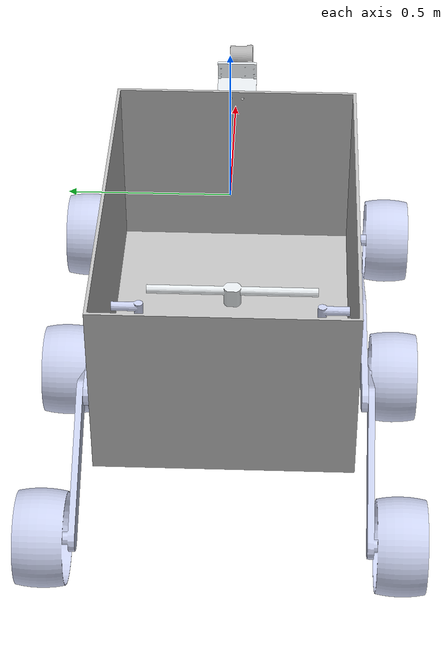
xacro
<?xml version="1.0" encoding="utf-8"?>
<robot xmlns:xacro="http://www.ros.org/wiki/xacro"
  name="MarsRover">
  <xacro:include filename="$(find mars_rover)/urdf/MarsRover.gazebo" />
  <xacro:property name="PI" value="3.141592654" />
  <xacro:property name="LidarAngle" value="${PI/180*0}" />
  <xacro:property name="LidarHeight" value="-0.0" />
  <xacro:property name="LidarName" value="PandarQT" />
  <xacro:property name="LidarDataTopicName" value="PandarQT_Data" />
  <xacro:property name="LidarHz" value="10" />
  <xacro:property name="LidarLasers" value="64" />
  <xacro:property name="LidarSamples" value="600" />
  <xacro:property name="LidarBeamVisual" value="false" />

  <link
    name="body">
    <inertial>
      <origin
        xyz="-0.0001479 -1.1102E-16 -0.38223"
        rpy="0 0 0" />
      <mass
        value="32.929" />
      <inertia
        ixx="4.4749"
        ixy="-1.3173E-14"
        ixz="-0.00050348"
        iyy="7.3974"
        iyz="-8.0126E-16"
        izz="9.2942" />
    </inertial>
    <visual>
      <origin
        xyz="0 0 0"
        rpy="0 0 0" />
      <geometry>
        <mesh
          filename="package://mars_rover/meshes/body.dae" />
      </geometry>
      <material
        name="">
        <color
          rgba="0.75294 0.75294 0.75294 1" />
      </material>
    </visual>
    <collision>
      <origin
        xyz="0 0 0"
        rpy="0 0 0" />
      <geometry>
        <mesh
          filename="package://mars_rover/meshes/body.dae" />
      </geometry>
    </collision>
  </link>
  <link
    name="DiffBar">
    <inertial>
      <origin
        xyz="7.2337E-10 -3.373E-08 -0.022313"
        rpy="0 0 0" />
      <mass
        value="1.4917" />
      <inertia
        ixx="0.030386"
        ixy="-6.0053E-07"
        ixz="-4.2736E-11"
        iyy="0.00058396"
        iyz="-1.8798E-08"
        izz="0.030095" />
    </inertial>
    <visual>
      <origin
        xyz="0 0 0"
        rpy="0 0 0" />
      <geometry>
        <mesh
          filename="package://mars_rover/meshes/DiffBar.dae" />
      </geometry>
      <material
        name="">
        <color
          rgba="0.89804 0.91765 0.92941 1" />
      </material>
    </visual>
    <collision>
      <origin
        xyz="0 0 0"
        rpy="0 0 0" />
      <geometry>
        <mesh
          filename="package://mars_rover/meshes/DiffBar.dae" />
      </geometry>
    </collision>
  </link>
  <joint
    name="joint_body_DiffBar"
    type="continuous">
    <origin
      xyz="0.20043 0 -0.525"
      rpy="0 0 0" />
    <parent
      link="body" />
    <child
      link="DiffBar" />
    <axis
      xyz="0 0 1" />
  </joint>
  <link
    name="LeftMainRocket">
    <inertial>
      <origin
        xyz="0.19478 0.032219 -0.10164"
        rpy="0 0 0" />
      <mass
        value="2.3166" />
      <inertia
        ixx="0.025318"
        ixy="-0.0056299"
        ixz="0.076395"
        iyy="0.32297"
        iyz="0.0021277"
        izz="0.30151" />
    </inertial>
    <visual>
      <origin
        xyz="0 0 0"
        rpy="0 0 0" />
      <geometry>
        <mesh
          filename="package://mars_rover/meshes/LeftMainRocket.dae" />
      </geometry>
      <material
        name="">
        <color
          rgba="0.79216 0.81961 0.93333 1" />
      </material>
    </visual>
    <collision>
      <origin
        xyz="0 0 0"
        rpy="0 0 0" />
      <geometry>
        <mesh
          filename="package://mars_rover/meshes/LeftMainRocket.dae" />
      </geometry>
    </collision>
  </link>
  <joint
    name="joint_body_LeftMainRocket"
    type="continuous">
    <origin
      xyz="0 0.395 -0.455"
      rpy="0 0 0" />
    <parent
      link="body" />
    <child
      link="LeftMainRocket" />
    <axis
      xyz="0 -1 0" />
  </joint>
  <link
    name="LeftViceRocket">
    <inertial>
      <origin
        xyz="0.00032494 0.0045778 -0.14283"
        rpy="0 0 0" />
      <mass
        value="1.7019" />
      <inertia
        ixx="0.011641"
        ixy="-1.7935E-06"
        ixz="-0.00023484"
        iyy="0.12548"
        iyz="0.00078835"
        izz="0.11487" />
    </inertial>
    <visual>
      <origin
        xyz="0 0 0"
        rpy="0 0 0" />
      <geometry>
        <mesh
          filename="package://mars_rover/meshes/LeftViceRocket.dae" />
      </geometry>
      <material
        name="">
        <color
          rgba="0.79216 0.81961 0.93333 1" />
      </material>
    </visual>
    <collision>
      <origin
        xyz="0 0 0"
        rpy="0 0 0" />
      <geometry>
        <mesh
          filename="package://mars_rover/meshes/LeftViceRocket.dae" />
      </geometry>
    </collision>
  </link>
  <joint
    name="joint_LeftMainRocket_LeftViceRocket"
    type="continuous">
    <origin
      xyz="-0.40088 0.055 -0.023072"
      rpy="0 0 0" />
    <parent
      link="LeftMainRocket" />
    <child
      link="LeftViceRocket" />
    <axis
      xyz="0 -1 0" />
  </joint>
  <link
    name="LeftMiddleWheel">
    <inertial>
      <origin
        xyz="0 -1.6653E-16 -2.7756E-17"
        rpy="0 0 0" />
      <mass
        value="2.468" />
      <inertia
        ixx="0.021876"
        ixy="8.5663E-19"
        ixz="-1.1926E-17"
        iyy="0.040526"
        iyz="-4.7148E-18"
        izz="0.021876" />
    </inertial>
    <visual>
      <origin
        xyz="0 0 0"
        rpy="0 0 0" />
      <geometry>
        <mesh
          filename="package://mars_rover/meshes/LeftMiddleWheel.dae" />
      </geometry>
      <material
        name="">
        <color
          rgba="0.79216 0.81961 0.93333 1" />
      </material>
    </visual>
    <collision>
      <origin
        xyz="0 0 0"
        rpy="0 0 0" />
      <geometry>
        <mesh
          filename="package://mars_rover/meshes/LeftMiddleWheel.dae" />
      </geometry>
    </collision>
  </link>
  <joint
    name="joint_LeftViceRocket_LeftMiddleWheel"
    type="continuous">
    <origin
      xyz="0.38804 0.09 -0.24313"
      rpy="0 0 0" />
    <parent
      link="LeftViceRocket" />
    <child
      link="LeftMiddleWheel" />
    <axis
      xyz="0 1 0" />
  </joint>
  <link
    name="LeftRearWheel">
    <inertial>
      <origin
        xyz="-5.5511E-17 -5.5511E-17 0"
        rpy="0 0 0" />
      <mass
        value="2.468" />
      <inertia
        ixx="0.021876"
        ixy="2.3544E-18"
        ixz="-1.088E-17"
        iyy="0.040526"
        iyz="-3.3563E-18"
        izz="0.021876" />
    </inertial>
    <visual>
      <origin
        xyz="0 0 0"
        rpy="0 0 0" />
      <geometry>
        <mesh
          filename="package://mars_rover/meshes/LeftRearWheel.dae" />
      </geometry>
      <material
        name="">
        <color
          rgba="0.79216 0.81961 0.93333 1" />
      </material>
    </visual>
    <collision>
      <origin
        xyz="0 0 0"
        rpy="0 0 0" />
      <geometry>
        <mesh
          filename="package://mars_rover/meshes/LeftRearWheel.dae" />
      </geometry>
    </collision>
  </link>
  <joint
    name="joint_LeftViceRocket_LeftRearWheel"
    type="continuous">
    <origin
      xyz="-0.38693 0.09 -0.2449"
      rpy="0 0 0" />
    <parent
      link="LeftViceRocket" />
    <child
      link="LeftRearWheel" />
    <axis
      xyz="0 1 0" />
  </joint>
  <link
    name="LeftFrontWheel">
    <inertial>
      <origin
        xyz="0 0 8.3267E-17"
        rpy="0 0 0" />
      <mass
        value="2.468" />
      <inertia
        ixx="0.021876"
        ixy="-1.137E-18"
        ixz="1.0907E-17"
        iyy="0.040526"
        iyz="-4.2082E-18"
        izz="0.021876" />
    </inertial>
    <visual>
      <origin
        xyz="0 0 0"
        rpy="0 0 0" />
      <geometry>
        <mesh
          filename="package://mars_rover/meshes/LeftFrontWheel.dae" />
      </geometry>
      <material
        name="">
        <color
          rgba="0.79216 0.81961 0.93333 1" />
      </material>
    </visual>
    <collision>
      <origin
        xyz="0 0 0"
        rpy="0 0 0" />
      <geometry>
        <mesh
          filename="package://mars_rover/meshes/LeftFrontWheel.dae" />
      </geometry>
    </collision>
  </link>
  <joint
    name="joint_LeftMainRocket_LeftFrontWheel"
    type="continuous">
    <origin
      xyz="0.75893 0.145 -0.27932"
      rpy="0 0 0" />
    <parent
      link="LeftMainRocket" />
    <child
      link="LeftFrontWheel" />
    <axis
      xyz="0 1 0" />
  </joint>
  <link
    name="RightMainRocket">
    <inertial>
      <origin
        xyz="0.19476 -0.032219 -0.10167"
        rpy="0 0 0" />
      <mass
        value="2.3166" />
      <inertia
        ixx="0.02534"
        ixy="0.0056295"
        ixz="0.076435"
        iyy="0.32297"
        iyz="-0.0021285"
        izz="0.30149" />
    </inertial>
    <visual>
      <origin
        xyz="0 0 0"
        rpy="0 0 0" />
      <geometry>
        <mesh
          filename="package://mars_rover/meshes/RightMainRocket.dae" />
      </geometry>
      <material
        name="">
        <color
          rgba="0.79216 0.81961 0.93333 1" />
      </material>
    </visual>
    <collision>
      <origin
        xyz="0 0 0"
        rpy="0 0 0" />
      <geometry>
        <mesh
          filename="package://mars_rover/meshes/RightMainRocket.dae" />
      </geometry>
    </collision>
  </link>
  <joint
    name="joint_body_RightMainRocket"
    type="continuous">
    <origin
      xyz="0 -0.395 -0.455"
      rpy="0 0 0" />
    <parent
      link="body" />
    <child
      link="RightMainRocket" />
    <axis
      xyz="0 1 0" />
  </joint>
  <link
    name="RightViceRocket">
    <inertial>
      <origin
        xyz="-3.7473E-05 -0.0045778 -0.14283"
        rpy="0 0 0" />
      <mass
        value="1.7019" />
      <inertia
        ixx="0.01164"
        ixy="-2.0683E-07"
        ixz="2.7083E-05"
        iyy="0.12548"
        iyz="-0.00078835"
        izz="0.11487" />
    </inertial>
    <visual>
      <origin
        xyz="0 0 0"
        rpy="0 0 0" />
      <geometry>
        <mesh
          filename="package://mars_rover/meshes/RightViceRocket.dae" />
      </geometry>
      <material
        name="">
        <color
          rgba="0.79216 0.81961 0.93333 1" />
      </material>
    </visual>
    <collision>
      <origin
        xyz="0 0 0"
        rpy="0 0 0" />
      <geometry>
        <mesh
          filename="package://mars_rover/meshes/RightViceRocket.dae" />
      </geometry>
    </collision>
  </link>
  <joint
    name="joint_RightMainRocket_RightViceRocket"
    type="continuous">
    <origin
      xyz="-0.40088 -0.055 -0.023015"
      rpy="0 0 0" />
    <parent
      link="RightMainRocket" />
    <child
      link="RightViceRocket" />
    <axis
      xyz="0 -1 0" />
  </joint>
  <link
    name="RightMiddleWheel">
    <inertial>
      <origin
        xyz="5.5511E-17 -4.4409E-16 2.7756E-17"
        rpy="0 0 0" />
      <mass
        value="2.468" />
      <inertia
        ixx="0.021876"
        ixy="5.6669E-19"
        ixz="-1.8696E-18"
        iyy="0.040526"
        iyz="7.0045E-19"
        izz="0.021876" />
    </inertial>
    <visual>
      <origin
        xyz="0 0 0"
        rpy="0 0 0" />
      <geometry>
        <mesh
          filename="package://mars_rover/meshes/RightMiddleWheel.dae" />
      </geometry>
      <material
        name="">
        <color
          rgba="0.79216 0.81961 0.93333 1" />
      </material>
    </visual>
    <collision>
      <origin
        xyz="0 0 0"
        rpy="0 0 0" />
      <geometry>
        <mesh
          filename="package://mars_rover/meshes/RightMiddleWheel.dae" />
      </geometry>
    </collision>
  </link>
  <joint
    name="joint_RightViceRocket_RightMiddleWheel"
    type="continuous">
    <origin
      xyz="0.38742 -0.09 -0.24412"
      rpy="0 0 0" />
    <parent
      link="RightViceRocket" />
    <child
      link="RightMiddleWheel" />
    <axis
      xyz="0 -1 0" />
  </joint>
  <link
    name="RightRearWheel">
    <inertial>
      <origin
        xyz="-5.5511E-17 -2.2204E-16 0"
        rpy="0 0 0" />
      <mass
        value="2.468" />
      <inertia
        ixx="0.021876"
        ixy="2.2071E-18"
        ixz="-8.4262E-18"
        iyy="0.040526"
        iyz="5.2919E-19"
        izz="0.021876" />
    </inertial>
    <visual>
      <origin
        xyz="0 0 0"
        rpy="0 0 0" />
      <geometry>
        <mesh
          filename="package://mars_rover/meshes/RightRearWheel.dae" />
      </geometry>
      <material
        name="">
        <color
          rgba="0.79216 0.81961 0.93333 1" />
      </material>
    </visual>
    <collision>
      <origin
        xyz="0 0 0"
        rpy="0 0 0" />
      <geometry>
        <mesh
          filename="package://mars_rover/meshes/RightRearWheel.dae" />
      </geometry>
    </collision>
  </link>
  <joint
    name="joint_RightViceRocket_RightRearWheel"
    type="continuous">
    <origin
      xyz="-0.38755 -0.09 -0.24391"
      rpy="0 0 0" />
    <parent
      link="RightViceRocket" />
    <child
      link="RightRearWheel" />
    <axis
      xyz="0 -1 0" />
  </joint>
  <link
    name="RightFrontWheel">
    <inertial>
      <origin
        xyz="2.2204E-16 -2.2204E-16 2.7756E-17"
        rpy="0 0 0" />
      <mass
        value="2.468" />
      <inertia
        ixx="0.021876"
        ixy="7.7604E-19"
        ixz="-2.648E-18"
        iyy="0.040526"
        iyz="-6.0073E-18"
        izz="0.021876" />
    </inertial>
    <visual>
      <origin
        xyz="0 0 0"
        rpy="0 0 0" />
      <geometry>
        <mesh
          filename="package://mars_rover/meshes/RightFrontWheel.dae" />
      </geometry>
      <material
        name="">
        <color
          rgba="0.79216 0.81961 0.93333 1" />
      </material>
    </visual>
    <collision>
      <origin
        xyz="0 0 0"
        rpy="0 0 0" />
      <geometry>
        <mesh
          filename="package://mars_rover/meshes/RightFrontWheel.dae" />
      </geometry>
    </collision>
  </link>
  <joint
    name="joint_RightMainRocket_RightFrontWheel"
    type="continuous">
    <origin
      xyz="0.75889 -0.145 -0.27943"
      rpy="0 0 0" />
    <parent
      link="RightMainRocket" />
    <child
      link="RightFrontWheel" />
    <axis
      xyz="0 -1 0" />
  </joint>
  <link
    name="LiDARBodyCon">
    <inertial>
      <origin
        xyz="-0.049583 -1.1102E-16 -0.01309"
        rpy="0 0 0" />
      <mass
        value="0.2293" />
      <inertia
        ixx="0.00036659"
        ixy="-5.8124E-20"
        ixz="-4.7613E-05"
        iyy="0.00023526"
        iyz="-2.3775E-20"
        izz="0.00053318" />
    </inertial>
    <visual>
      <origin
        xyz="0 0 0"
        rpy="0 0 0" />
      <geometry>
        <mesh
          filename="package://mars_rover/meshes/LiDARBodyCon.dae" />
      </geometry>
      <material
        name="">
        <color
          rgba="0.89804 0.91765 0.92941 1" />
      </material>
    </visual>
    <collision>
      <origin
        xyz="0 0 0"
        rpy="0 0 0" />
      <geometry>
        <mesh
          filename="package://mars_rover/meshes/LiDARBodyCon.dae" />
      </geometry>
    </collision>
  </link>
  <joint
    name="joint_body_LiDARCon"
    type="fixed">
    <origin
      xyz="0.6825 0 0.004"
      rpy="0 0 0" />
    <parent
      link="body" />
    <child
      link="LiDARBodyCon" />
    <axis
      xyz="0 0 0" />
  </joint>
  <link
    name="LiDARSupport">
    <inertial>
      <origin
        xyz="-0.016892 0 0.036225"
        rpy="0 0 0" />
      <mass
        value="0.23629" />
      <inertia
        ixx="0.00044478"
        ixy="-4.1152E-20"
        ixz="5.4657E-05"
        iyy="0.00014519"
        iyz="5.8651E-20"
        izz="0.00035306" />
    </inertial>
    <visual>
      <origin
        xyz="0 0 0"
        rpy="0 0 0" />
      <geometry>
        <mesh
          filename="package://mars_rover/meshes/LiDARSupport.dae" />
      </geometry>
      <material
        name="">
        <color
          rgba="0.89804 0.91765 0.92941 1" />
      </material>
    </visual>
    <collision>
      <origin
        xyz="0 0 0"
        rpy="0 0 0" />
      <geometry>
        <mesh
          filename="package://mars_rover/meshes/LiDARSupport.dae" />
      </geometry>
    </collision>
  </link>
  <joint
    name="joint_LiDARBodyCon_LiDARSupport"
    type="fixed">
    <origin
      xyz="0 0 0"
      rpy="0 ${LidarAngle} 0" />
    <parent
      link="LiDARBodyCon" />
    <child
      link="LiDARSupport" />
    <axis
      xyz="0 1 0" />
    <limit
      lower="0"
      upper="0"
      effort="0"
      velocity="0" />
  </joint>
  <link
    name="LiDAR">
    <inertial>
      <origin
        xyz="-0.00012666 -9.4209E-09 -0.012924"
        rpy="0 0 0" />
      <mass
        value="0.47584" />
      <inertia
        ixx="0.00040759"
        ixy="-1.3958E-10"
        ixz="-1.3527E-06"
        iyy="0.00040186"
        iyz="-1.5768E-10"
        izz="0.0003397" />
    </inertial>
    <visual>
      <origin
        xyz="0 0 0"
        rpy="0 0 0" />
      <geometry>
        <mesh
          filename="package://mars_rover/meshes/LiDAR.dae" />
      </geometry>
      <material
        name="">
        <color
          rgba="0.69804 0.69804 0.69804 1" />
      </material>
    </visual>
    <collision>
      <origin
        xyz="0 0 0"
        rpy="0 0 0" />
      <geometry>
        <mesh
          filename="package://mars_rover/meshes/LiDAR.dae" />
      </geometry>
    </collision>
  </link>
  <joint
    name="joint_LiDARSupport_LiDAR"
    type="fixed">
    <origin
      xyz="0.033455 0 0.056977"
      rpy="0 1.1345 0" />
    <parent
      link="LiDARSupport" />
    <child
      link="LiDAR" />
    <axis
      xyz="0 0 0" />
  </joint>

    <xacro:include filename="$(find mars_rover)/urdf/Sensors.xacro"/>
    <xacro:PandarQT link="${LidarName}" topic="${LidarDataTopicName}" hz="${LidarHz}" lasers="${LidarLasers}" samples="${LidarSamples}" visual="${LidarBeamVisual}"></xacro:PandarQT>
    <xacro:IMU link="${LidarName}" pitch="${0}" gaussianNoise="0.0"></xacro:IMU>
</robot>
